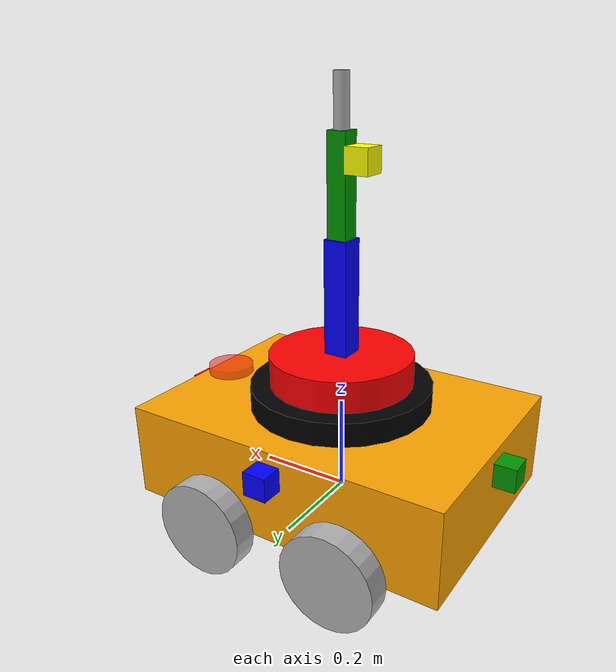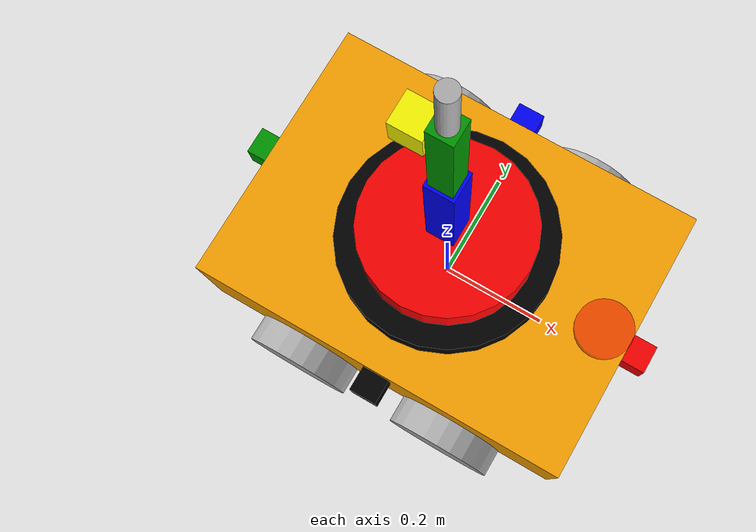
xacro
<?xml version="1.0"?>
<robot xmlns:xacro="http://ros.org/wiki/xacro" name="agv_fire_sprinkler">

  <!-- Properties -->
  <xacro:property name="base_radius" value="0.2"/>
  <xacro:property name="base_length" value="0.15"/>
  <xacro:property name="turret_radius" value="0.15"/>
  <xacro:property name="turret_length" value="0.07"/>
  <xacro:property name="turret_base_radius" value="0.19"/>
  <xacro:property name="turret_base_length" value="0.10"/>
  <xacro:property name="camera_size" value="0.05 0.05 0.05"/>
  <xacro:property name="link1_length" value="0.25"/>
  <xacro:property name="link2_length" value="0.2"/>
  <xacro:property name="x_dim" value="0.7"/>
  <xacro:property name="y_dim" value="0.5"/>
  <xacro:property name="z_dim" value="0.2"/>
  <xacro:property name="robotname" value="agv_fire_sprinkler"/>
  <xacro:property name="wheel_radius" value="0.1"/>
  <xacro:property name="wheel_thickness" value="0.05"/>
  <xacro:property name="wheel_mass" value="0.15"/>
  <xacro:property name= "pi_val" value = "3.14159265359"/>

  <xacro:macro name="inertial" params="mass">
    <inertial>
      <mass value="${mass}"/>
      <inertia ixx="1e-3" ixy="0.0" ixz="0.0" iyy="1e-3" iyz="0.0" izz="1e-3"/>
      <origin xyz="0.0 0.0 0.0" rpy="0.0 0.0 0.0"/>
    </inertial>
  </xacro:macro>

  <xacro:include filename="$(find my_ddrobot)/model/my_dd_robot.gazebo"/>

  <material name="grey">
    <color rgba="0.7 0.7 0.7 1"/>
  </material>

  <material name="green">
    <color rgba="0 0.6 0 1"/>
  </material>

  <material name="white">
    <color rgba="1 1 1 1"/>
  </material>

  <material name="yellow">
    <color rgba="1 1 0 1"/>
  </material>

  <material name="black">
    <color rgba="0 0 0 1"/>
  </material>

  <material name="red">
    <color rgba="1 0 0 1"/>
  </material>

  <material name="blue">
    <color rgba="0 0 1 1"/>
  </material>

  <material name="silver">
    <color rgba="0.7 0.7 0.7 1"/>
  </material>

  <material name="orange">
  <color rgba="1.0 0.647 0.0 1"/>
  </material>

  <material name="cyan">
  <color rgba="0.0 1.0 1.0 1"/>
  </material>

  <!-- Base Footprint -->
  <link name="base_footprint">
    <inertial>
      <mass value="0.001"/>
      <inertia ixx="1e-6" ixy="0" ixz="0" iyy="1e-6" iyz="0" izz="1e-6"/>
    </inertial>
  </link>

  <!-- Base link ; Body of the robot -->
  <link name="base_link">
    <visual>
      <geometry>
        <box size="${x_dim} ${y_dim} ${z_dim}"/>
      </geometry>
      <origin xyz="0 0 0.1" rpy="0 0 0"/>
      <material name="orange"/>
    </visual>
    <collision>
      <geometry>
        <box size="${x_dim} ${y_dim} ${z_dim}"/>
      </geometry>
      <origin xyz="0 0 0.1" rpy="0 0 0"/>
    </collision>
    <xacro:inertial mass="2"/>
  </link>

  <link name="camera_link">
        <visual>
             <geometry>
                <box size="0.05 0.05 0.05"/>
            </geometry>
                <origin xyz="0 0 0" rpy="0 0 0" />
            <material name="yellow" />
        </visual>
  <!-- Collision Geometry-->
    <collision>
        <geometry>
            <box size="0.05 0.05 0.05" />
        </geometry>
    </collision>
    <xacro:inertial mass="0.2"/>
    </link>

    <link name="camera_link_1">
        <visual>
             <geometry>
                <box size="0.05 0.05 0.05"/>
            </geometry>
                <origin xyz="0 0 0" rpy="0 0 0" />
            <material name="red"/>
        </visual>
    <collision>
        <geometry>
            <box size="0.05 0.05 0.05" />
        </geometry>
    </collision>

     <!-- Inertial Properties-->
    <xacro:inertial mass="0.2"/>
    </link>

    <link name="camera_link_2">
        <visual>
             <geometry>
                <box size="0.05 0.05 0.05"/>
            </geometry>
                <origin xyz="0 0 0" rpy="0 0 0" />
            <material name="blue" />
        </visual>
  <!-- Collision Geometry-->
    <collision>
        <geometry>
            <box size="0.05 0.05 0.05" />
        </geometry>
    </collision>

     <!-- Inertial Properties-->
    <xacro:inertial mass="0.2"/>
    </link>

    <link name="camera_link_3">
        <visual>
             <geometry>
                <box size="0.05 0.05 0.05"/>
            </geometry>
                <origin xyz="0 0 0" rpy="0 0 0" />
            <material name="green" />
        </visual>
  <!-- Collision Geometry-->
    <collision>
        <geometry>
            <box size="0.05 0.05 0.05" />
        </geometry>
    </collision>

     <!-- Inertial Properties-->
    <xacro:inertial mass="0.2"/>
    </link>

    <link name="camera_link_4">
        <visual>
             <geometry>
                <box size="0.05 0.05 0.05"/>
            </geometry>
                <origin xyz="0 0 0" rpy="0 0 0" />
            <material name="black" />
        </visual>
  <!-- Collision Geometry-->
    <collision>
        <geometry>
            <box size="0.05 0.05 0.05" />
        </geometry>
    </collision>

  <!-- Inertial Properties-->
    <xacro:inertial mass="0.2"/>
    </link>
  <link name="rear_left_wheel">
    <visual>
      <geometry>
        <cylinder radius="${wheel_radius}" length="${wheel_thickness}"/>
      </geometry>
      <origin xyz="0 0 0" rpy="1.57 0 0"/>
      <material name="grey"/>
    </visual>
    <collision>
      <geometry>
        <cylinder radius="${wheel_radius}" length="${wheel_thickness}"/>
      </geometry>
      <origin xyz="0 0 0" rpy="1.57 0 0"/>
    </collision>
    <xacro:inertial mass="${wheel_mass}"/>
  </link>

  <link name="rear_right_wheel">
    <visual>
      <geometry>
        <cylinder radius="${wheel_radius}" length="${wheel_thickness}"/>
      </geometry>
      <origin xyz="0 0 0" rpy="1.57 0 0"/>
      <material name="grey"/>
    </visual>
    <collision>
      <geometry>
        <cylinder radius="${wheel_radius}" length="${wheel_thickness}"/>
      </geometry>
      <origin xyz="0 0 0" rpy="1.57 0 0"/>
    </collision>
    <xacro:inertial mass="${wheel_mass}"/>
  </link>

  <link name="front_left_wheel">
    <visual>
      <geometry>
        <cylinder radius="${wheel_radius}" length="${wheel_thickness}"/>
      </geometry>
      <origin xyz="0 0 0" rpy="1.57 0 0"/>
      <material name="grey"/>
    </visual>
    <collision>
      <geometry>
        <cylinder radius="${wheel_radius}" length="${wheel_thickness}"/>
      </geometry>
      <origin xyz="0 0 0" rpy="1.57 0 0"/>
    </collision>
    <xacro:inertial mass="${wheel_mass}"/>
  </link>

  <link name="front_right_wheel">
    <visual>
      <geometry>
        <cylinder radius="${wheel_radius}" length="${wheel_thickness}"/>
      </geometry>
      <origin xyz="0 0 0" rpy="1.57 0 0"/>
      <material name="grey"/>
    </visual>
    <collision>
      <geometry>
        <cylinder radius="${wheel_radius}" length="${wheel_thickness}"/>
      </geometry>
      <origin xyz="0 0 0" rpy="1.57 0 0"/>
    </collision>
    <xacro:inertial mass="${wheel_mass}"/>
  </link>

  <!-- Wheel Joints -->
  <joint name="base_rr_wheel_joint" type="continuous">
    <parent link="base_link"/>
    <child link="rear_right_wheel"/>
    <origin xyz="-0.15 -0.275 0" rpy="0 0 0"/>
    <axis xyz="0 1 0"/>
    <dynamics damping="1.0" friction="0.4"/>
  </joint>

  <joint name="base_rl_wheel_joint" type="continuous">
    <parent link="base_link"/>
    <child link="rear_left_wheel"/>
    <origin xyz="-0.15 0.275 0" rpy="0 0 0"/>
    <axis xyz="0 1 0"/>
    <dynamics damping="1.0" friction="0.4"/>
  </joint>

  <joint name="base_fr_wheel_joint" type="continuous">
    <parent link="base_link"/>
    <child link="front_right_wheel"/>
    <origin xyz="0.15 -0.275 0" rpy="0 0 0"/>
    <axis xyz="0 1 0"/>
    <dynamics damping="1.0" friction="0.4"/>
  </joint>

  <joint name="base_fl_wheel_joint" type="continuous">
    <parent link="base_link"/>
    <child link="front_left_wheel"/>
    <origin xyz="0.15 0.275 0" rpy="0 0 0"/>
    <axis xyz="0 1 0"/>
    <dynamics damping="1.0" friction="0.4"/>
  </joint>

<!-- Nozzle Link -->
<link name="nozzle_link">
  <visual>
    <geometry>
      <cylinder length="0.1" radius="0.015"/>
    </geometry>
    <material name="silver"/>
  </visual>
  <collision>
    <geometry>
      <cylinder length="0.1" radius="0.02"/>
    </geometry>
    <origin xyz="0 0 0" rpy="0 0 0"/>
  </collision>
  <inertial>
    <mass value="0.1"/>
    <origin xyz="0 0 0" rpy="0 0 0"/>
    <inertia ixx="0.0001" ixy="0" ixz="0" iyy="0.0001" iyz="0" izz="0.0001"/>
  </inertial>
</link>

<!-- Turret Base -->
<link name="turret_base">
  <inertial>
    <mass value="0.5"/>
    <origin xyz="0 0 0" rpy="0 0 0"/>
    <inertia ixx="0.01" ixy="0" ixz="0" iyy="0.01" iyz="0" izz="0.01"/>
  </inertial>
  <visual>
    <geometry>
      <cylinder radius="${turret_base_radius}" length="${turret_base_length}"/>
    </geometry>
    <origin xyz="0 0 0.05" rpy="0 0 0"/>
    <material name="black"/>
  </visual>
  <collision>
    <geometry>
      <cylinder radius="${turret_base_radius}" length="${turret_base_length}"/>
    </geometry>
    <origin xyz="0 0 0.05" rpy="0 0 0"/>
  </collision>
</link>

<!-- Turret -->
<link name="turret">
  <inertial>
    <mass value="0.5"/>
    <origin xyz="0 0 0" rpy="0 0 0"/>
    <inertia ixx="0.01" ixy="0" ixz="0" iyy="0.01" iyz="0" izz="0.01"/>
  </inertial>
  <visual>
    <geometry>
      <cylinder radius="${turret_radius}" length="${turret_length}"/>
    </geometry>
    <origin xyz="0 0 0.05" rpy="0 0 0"/>
    <material name="red"/>
  </visual>
  <collision>
    <geometry>
      <cylinder radius="${turret_radius}" length="${turret_length}"/>
    </geometry>
    <origin xyz="0 0 0.05" rpy="0 0 0"/>
  </collision>
</link>

<!-- Arm Link 1 -->
<link name="arm_link_1">
  <inertial>
    <mass value="0.2"/>
    <origin xyz="0 0 ${link1_length/2}" rpy="0 0 0"/>
    <inertia ixx="0.01" ixy="0" ixz="0" iyy="0.01" iyz="0" izz="0.01"/>
  </inertial>
  <visual>
    <geometry>
      <box size="0.05 0.05 ${link1_length}"/>
    </geometry>
    <origin xyz="0 0 ${link1_length/2}" rpy="0 0 0"/>
    <material name="blue"/>
  </visual>
  <collision>
    <geometry>
      <box size="0.05 0.05 ${link1_length}"/>
    </geometry>
    <origin xyz="0 0 ${link1_length/2}" rpy="0 0 0"/>
  </collision>

</link>

<!-- Arm Link 2 -->
<link name="arm_link_2">
  <inertial>
    <mass value="0.15"/>
    <origin xyz="0 0 ${link2_length/2}" rpy="0 0 0"/>
    <inertia ixx="0.008" ixy="0" ixz="0" iyy="0.008" iyz="0" izz="0.008"/>
  </inertial>
  <visual>
    <geometry>
      <box size="0.04 0.04 ${link2_length}"/>
    </geometry>
    <origin xyz="0 0 ${link2_length/2}" rpy="0 0 0"/>
    <material name="green"/>
  </visual>
  <collision>
    <geometry>
      <box size="0.04 0.04 ${link2_length}"/>
    </geometry>
    <origin xyz="0 0 ${link2_length/2}" rpy="0 0 0"/>
  </collision>
</link>

<!-- Joints -->
<joint name="base_turret_base_joint" type="fixed">
  <parent link="base_link"/>
  <child link="turret_base"/>
  <origin xyz="0 0 0.15" rpy="0 0 0"/>
</joint>

<joint name="turret_base_turret_joint" type="continuous">
  <parent link="turret_base"/>
  <child link="turret"/>
  <origin xyz="0 0 0.08" rpy="0 0 0"/>
  <axis xyz="0 0 1"/>
  <limit effort="10" velocity="1.5"/>
  <dynamics damping="0.5" friction="0.2"/>
</joint>

<joint name="arm_link_1_joint" type="revolute">
  <parent link="turret"/>
  <child link="arm_link_1"/>
  <origin xyz="0 0 0.07" rpy="0 0 0"/>
  <axis xyz="0 1 0"/>
  <limit lower="-1.23" upper="1.23" effort="5" velocity="1.0"/>
  <dynamics damping="0.8" friction="0.5"/>
</joint>

<joint name="arm_link_2_joint" type="revolute">
  <parent link="arm_link_1"/>
  <child link="arm_link_2"/>
  <origin xyz="0 0 ${link1_length}" rpy="0 0 0"/>
  <axis xyz="0 1 0"/>
  <limit lower="-0.805" upper="0.805" effort="5" velocity="1.0"/>
  <dynamics damping="0.8" friction="0.5"/>
</joint>

<joint name="arm_to_nozzle" type="fixed">
  <parent link="arm_link_2"/>
  <child link="nozzle_link"/>
  <origin xyz="0 0 0.25" rpy="0 0 0"/>
</joint>

<link name="lidar_link">
  <visual>
    <geometry>
      <cylinder radius="0.05" length="0.02"/> <!-- Small visual marker -->
    </geometry>
    <material name="red">
      <color rgba="1 0 0 0.5"/>
    </material>
  </visual>
  <collision>
    <geometry>
      <cylinder radius="0.05" length="0.02"/>
    </geometry>
  </collision>
  <inertial>
    <mass value="0.2"/>
    <inertia ixx="0.001" ixy="0" ixz="0" iyy="0.001" iyz="0" izz="0.001"/>
  </inertial>
</link>

  <joint name="lidar_joint" type="fixed">
    <parent link="base_link"/>
    <child link="lidar_link"/>
    <origin xyz="0.3 0 0.2101" rpy="0 0 0"/>
  </joint>

  <joint name="base_footprint_to_base_link" type="fixed">
    <parent link="base_footprint"/>
    <child link="base_link"/>
    <origin xyz="0 0 0" rpy="0 0 0"/>
  </joint>

  <!--Camera to Body Joint -->
      <joint name="arm2_camera_joint" type="fixed">
        <parent link="arm_link_2"/>
        <child link="camera_link"/>
        <origin xyz="-0.045 0 0.15" rpy="0.0 ${-pi_val/2.0} 0.0"/>
    </joint>

    <joint name="base_camera_1_joint" type="fixed">
        <parent link="base_link"/>
        <child link="camera_link_1"/>
        <origin xyz="0.37 0 0.15" rpy="0.0 0.0 0.0"/>
    </joint>

    <joint name="base_camera_2_joint" type="fixed">
        <parent link="base_link"/>
        <child link="camera_link_2"/>
        <origin xyz="0.005 0.27 0.15" rpy="${-pi_val/2.0} 0.0 ${pi_val/2.0}"/>
    </joint>

    <joint name="base_camera_3_joint" type="fixed">
        <parent link="base_link"/>
        <child link="camera_link_3"/>
        <origin xyz="-0.37 0 0.15" rpy="${-pi_val/2.0} 0.0 ${pi_val}"/>
    </joint>

    <joint name="base_camera_4_joint" type="fixed">
        <parent link="base_link"/>
        <child link="camera_link_4"/>
        <origin xyz="0.005 -0.27 0.15" rpy="${-pi_val/2.0} 0.0 ${-pi_val/2.0}"/>
    </joint>

     <!-- TURRET CAMERA (should face backward) -->
    <joint name="camera_optical_joint" type="fixed">
      <parent link="camera_link"/>
      <child link="camera_link_optical"/>
      <origin xyz="0.0 0.0 0.0" rpy="0.0 ${-pi_val/2.0} 0.0"/>
    </joint>

     <!-- FRONT camera -->
    <joint name="camera_optical_joint_1" type="fixed">
      <parent link="camera_link_1"/>
      <child link="camera_link_optical_1"/>
      <origin xyz="0.0 0.0 0.0" rpy="0.0 0.0 0.0"/>
    </joint>

     <!-- LEFT camera -->
    <joint name="camera_optical_joint_2" type="fixed">
     <parent link="camera_link_2"/>
     <child link="camera_link_optical_2"/>
      <origin xyz="0.0 0.0 0.0" rpy="${-pi_val/2.0} 0.0 0.0"/>
    </joint>

  <!-- BACK camera -->
  <joint name="camera_optical_joint_3" type="fixed">
  <parent link="camera_link_3"/>
  <child link="camera_link_optical_3"/>
  <origin xyz="0.0 0.0 0.0" rpy="${-pi_val/2.0} 0.0 ${pi_val}"/>
  </joint>

  <!-- RIGHT camera -->
  <joint name="camera_optical_joint_4" type="fixed">
  <parent link="camera_link_4"/>
  <child link="camera_link_optical_4"/>
  <origin xyz="0.0 0.0 0.0" rpy="${-pi_val/2.0} 0.0 ${-pi_val/2.0}"/>
  </joint>

  <link name = "camera_link_optical"> </link>
  <link name = "camera_link_optical_1"> </link>
  <link name = "camera_link_optical_2"> </link>
  <link name = "camera_link_optical_3"> </link>
  <link name = "camera_link_optical_4"> </link>

<gazebo>
    <plugin name="arm1_controller" filename="libgazebo_ros_joint_control.so">
      <joint_name>base_arm_link_1_joint</joint_name>
      <control_type>position</control_type>
      <max_force>5</max_force>
      <p_gain>100</p_gain>
      <d_gain>0.1</d_gain>
      <i_gain>0.0</i_gain>
      <target_position>0.0</target_position>
      <command_topic>/arm_link_1_position</command_topic>
    </plugin>
  </gazebo>

<ros2_control name="MyRobotHardware" type="system">
  <hardware>
    <plugin>gazebo_ros2_control/GazeboSystem</plugin>
  </hardware>

  <joint name="turret_base_turret_joint">
    <command_interface name="position">
      <param name="min">-3.14</param>
      <param name="max">3.14</param>
    </command_interface>
    <state_interface name="position"/>
    <state_interface name="velocity"/>
  </joint>

  <joint name="arm_link_1_joint">
    <command_interface name="position">
      <param name="min">-1.23</param>
      <param name="max">1.23</param>
    </command_interface>
    <state_interface name="position"/>
    <state_interface name="velocity"/>
  </joint>

  <joint name="arm_link_2_joint">
    <command_interface name="position">
      <param name="min">-0.805</param>
      <param name="max">0.805</param>
    </command_interface>
    <state_interface name="position"/>
    <state_interface name="velocity"/>
  </joint>
</ros2_control>

<!-- Transmission elements for ros2_control -->
<transmission name="turret_transmission">
  <type>transmission_interface/SimpleTransmission</type>
  <joint name="turret_base_turret_joint">
    <hardwareInterface>hardware_interface/PositionJointInterface</hardwareInterface>
  </joint>
  <actuator name="turret_motor">
    <hardwareInterface>hardware_interface/PositionJointInterface</hardwareInterface>
    <mechanicalReduction>1</mechanicalReduction>
  </actuator>
</transmission>

<transmission name="arm1_transmission">
  <type>transmission_interface/SimpleTransmission</type>
  <joint name="arm_link_1_joint">
    <hardwareInterface>hardware_interface/PositionJointInterface</hardwareInterface>
  </joint>
  <actuator name="arm1_motor">
    <hardwareInterface>hardware_interface/PositionJointInterface</hardwareInterface>
    <mechanicalReduction>1</mechanicalReduction>
  </actuator>
</transmission>

<transmission name="arm2_transmission">
  <type>transmission_interface/SimpleTransmission</type>
  <joint name="arm_link_2_joint">
    <hardwareInterface>hardware_interface/PositionJointInterface</hardwareInterface>
  </joint>
  <actuator name="arm2_motor">
    <hardwareInterface>hardware_interface/PositionJointInterface</hardwareInterface>
    <mechanicalReduction>1</mechanicalReduction>
  </actuator>
</transmission>

</robot>
